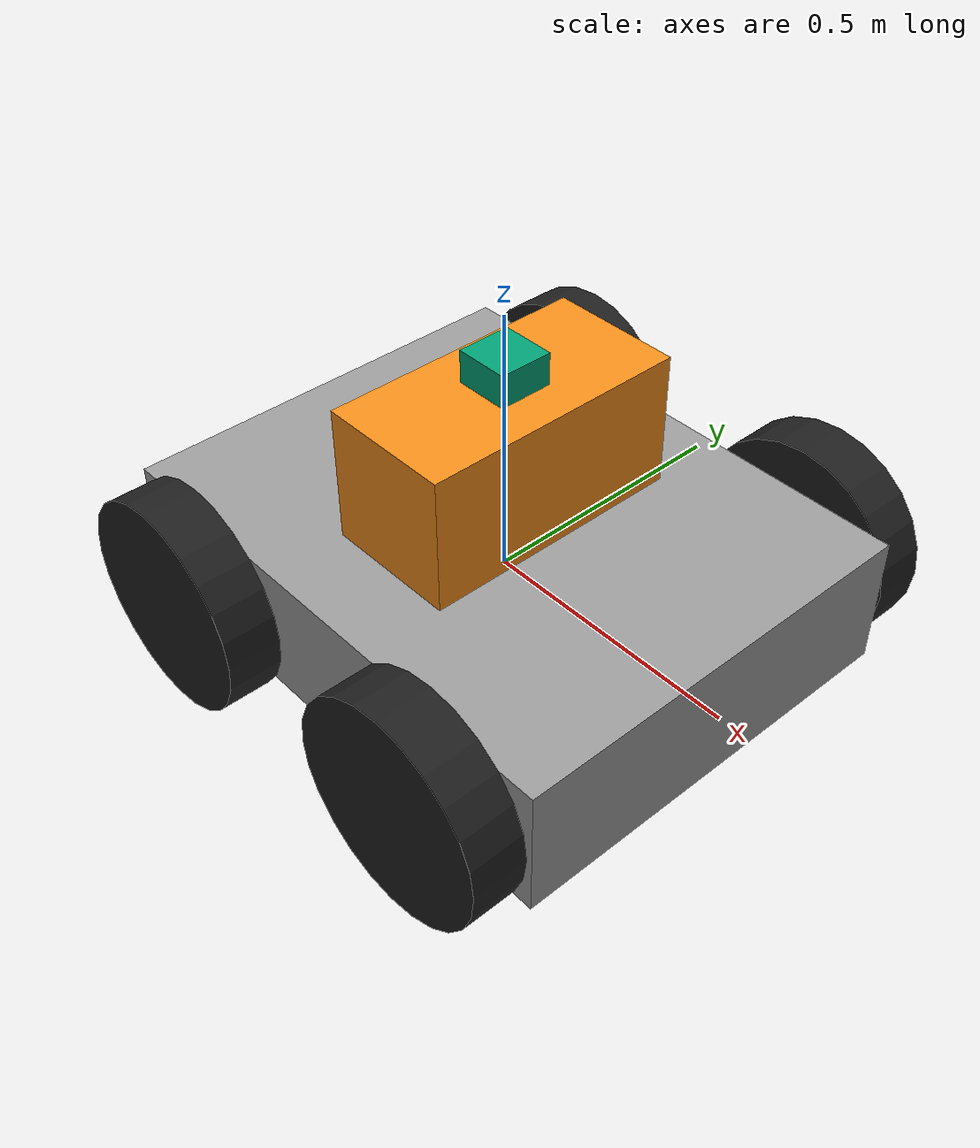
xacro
<?xml version="1.0"?>
<!-- Mobile Manipulation Robot -->
<robot name="momapbot" xmlns:xacro="http://www.ros.org/wiki/xacro">

  <!-- Constants and/or parameters of robot -->
  <xacro:property name="PI" value="3.1415926535897931"/>

  <!-- Base -->
  <xacro:property name="base_width" value=".8"/>
  <xacro:property name="base_length" value="1"/>
  <xacro:property name="base_height" value=".25"/>
  <xacro:property name="base_mass" value="25"/>

  <!--Torso-->
  <xacro:property name="torso_width" value=".5"/>
  <xacro:property name="torso_length" value=".25"/>
  <xacro:property name="torso_height" value=".25"/>
  <xacro:property name="torso_mass" value="5"/>

  <!-- Wheels -->
  <xacro:property name="wheel_radius" value=".2"/>
  <xacro:property name="wheel_width" value=".1"/>
  <xacro:property name="wheel_mass" value="1"/>

  <!-- Import all Gazebo-customization elements, including Gazebo colors -->
  <xacro:include filename="$(find momapbot_description)/urdf/momapbot.gazebo"/>

  <!-- Base -->
  <link name="base_link">

    <visual>
      <geometry>
        <box size="${base_length} ${base_width} ${base_height}"/>
      </geometry>
      <material name="grey"/>
    </visual>

    <collision>
      <geometry>
        <box size="${base_length} ${base_width} ${base_height}"/>
      </geometry>
    </collision>

    <inertial>
      <origin xyz="0 0 ${base_height/2}" rpy="0 0 0"/>
      <mass value="${base_mass}"/>
      <!-- THIS INERTIA IS WRONG. IT IS MADE UP -->
      <inertia
	  ixx="${base_mass / 12.0 * (base_width*base_width + base_height*base_height)}" ixy="0.0" ixz="0.0"
	  iyy="${base_mass / 12.0 * (base_height*base_height + base_width*base_width)}" iyz="0.0"
	  izz="${base_mass / 12.0 * (base_width*base_width + base_width*base_width)}"/>
    </inertial>

  </link>

  <!-- Torso -->
  <link name="torso">
    <visual>
      <geometry>
        <box size="${torso_length} ${torso_width} ${torso_height}"/>
      </geometry>
      <origin xyz="0 0 ${torso_height/2}"/>
      <material name="orange"/>
    </visual>

    <collision>
      <geometry>
        <box size="${torso_length} ${torso_width} ${torso_height}"/>
      </geometry>
      <origin xyz="0 0 ${torso_height/2}"/>
    </collision>

    <inertial>
      <origin xyz="0 0 ${torso_height/2}" rpy="0 0 0"/>
      <mass value="${torso_mass}"/>
      <!-- THIS INERTIA IS WRONG. IT IS MADE UP -->
      <inertia
	  ixx="${torso_mass / 12.0 * (torso_width*torso_width + torso_height*torso_height)}" ixy="0.0" ixz="0.0"
	  iyy="${torso_mass / 12.0 * (torso_height*torso_height + torso_width*torso_width)}" iyz="0.0"
	  izz="${torso_mass / 12.0 * (torso_width*torso_width + torso_width*torso_width)}"/>
    </inertial>

  </link>

  <joint name="base_to_torso" type="fixed">
    <parent link="base_link"/>
    <child link="torso"/>
    <origin xyz="0 0 ${base_height/2}"/>
  </joint>

  <!-- Hokuyo Laser -->
  <link name="hokuyo_link">
    <collision>
      <origin xyz="0 0 0" rpy="0 0 0"/>
      <geometry>
	<box size="0.1 0.1 0.1"/>
      </geometry>
    </collision>

    <visual>
      <origin xyz="0 0 0" rpy="0 0 0"/>
      <geometry>
        <box size="0.1 0.1 0.1"/>
      </geometry>
    </visual>

    <inertial>
      <mass value="1e-5" />
      <origin xyz="0 0 0" rpy="0 0 0"/>
      <inertia ixx="1e-6" ixy="0" ixz="0" iyy="1e-6" iyz="0" izz="1e-6" />
    </inertial>
  </link>

  <joint name="hokuyo_joint" type="fixed">
    <axis xyz="0 1 0" />
    <origin xyz="0 0 ${torso_height+.01}" rpy="0 0 0"/>
    <parent link="torso"/>
    <child link="hokuyo_link"/>
  </joint>

  <!-- Right Front Wheel -->
  <link name="right_front_wheel">
    <visual>
      <geometry>
        <cylinder length="${wheel_width}" radius="${wheel_radius}"/>
      </geometry>
      <material name="black"/>
    </visual>

    <collision>
      <geometry>
        <cylinder length="${wheel_width}" radius="${wheel_radius}"/>
      </geometry>
    </collision>

    <inertial>
      <mass value="${wheel_mass}"/>
      <inertia ixy="0" ixz="0" iyz="0"
	       ixx="${wheel_mass/12 * (3*wheel_radius*wheel_radius + wheel_width*wheel_width)}"
	       iyy="${wheel_mass/12 * (3*wheel_radius*wheel_radius + wheel_width*wheel_width)}"
	       izz="${wheel_mass*wheel_radius*wheel_radius/2}"/>
    </inertial>

  </link>

  <!-- Left Front Wheel-->
  <link name="left_front_wheel">
    <visual>
      <geometry>
        <cylinder length="${wheel_width}" radius="${wheel_radius}"/>
      </geometry>
      <material name="black"/>
    </visual>

    <collision>
      <geometry>
        <cylinder length="${wheel_width}" radius="${wheel_radius}"/>
      </geometry>
    </collision>

    <inertial>
      <mass value="${wheel_mass}"/>
      <inertia ixy="0" ixz="0" iyz="0"
	       ixx="${wheel_mass/12 * (3*wheel_radius*wheel_radius + wheel_width*wheel_width)}"
	       iyy="${wheel_mass/12 * (3*wheel_radius*wheel_radius + wheel_width*wheel_width)}"
	       izz="${wheel_mass*wheel_radius*wheel_radius/2}"/>
    </inertial>
  </link>

  <!-- Right Rear Wheel -->
  <link name="right_rear_wheel">
    <visual>
      <geometry>
        <cylinder length="${wheel_width}" radius="${wheel_radius}"/>
      </geometry>
      <material name="black"/>
    </visual>

    <collision>
      <geometry>
        <cylinder length="${wheel_width}" radius="${wheel_radius}"/>
      </geometry>
    </collision>

    <inertial>
      <mass value="${wheel_mass}"/>
      <inertia ixy="0" ixz="0" iyz="0"
	       ixx="${wheel_mass/12 * (3*wheel_radius*wheel_radius + wheel_width*wheel_width)}"
	       iyy="${wheel_mass/12 * (3*wheel_radius*wheel_radius + wheel_width*wheel_width)}"
	       izz="${wheel_mass*wheel_radius*wheel_radius/2}"/>
    </inertial>

  </link>

  <!-- Left Rear Wheel -->
  <link name="left_rear_wheel">
    <visual>
      <geometry>
        <cylinder length="${wheel_width}" radius="${wheel_radius}"/>
      </geometry>
      <material name="black"/>
    </visual>

    <collision>
      <geometry>
        <cylinder length="${wheel_width}" radius="${wheel_radius}"/>
      </geometry>
    </collision>

    <inertial>
      <mass value="${wheel_mass}"/>
      <inertia ixy="0" ixz="0" iyz="0"
	       ixx="${wheel_mass/12 * (3*wheel_radius*wheel_radius + wheel_width*wheel_width)}"
	       iyy="${wheel_mass/12 * (3*wheel_radius*wheel_radius + wheel_width*wheel_width)}"
	       izz="${wheel_mass*wheel_radius*wheel_radius/2}"/>
    </inertial>
  </link>

  <joint name="base_to_right_front_wheel" type="continuous">
    <axis xyz="0 0 1"/>
    <parent link="base_link"/>
    <child link="right_front_wheel"/>
    <origin rpy="${-PI/2} 0 0" xyz="${base_length/2-wheel_radius} ${-(base_width+wheel_width)/2-.01} 0.0"/>
  </joint>

  <transmission name="right_front_wheel_drive">
    <type>transmission_interface/SimpleTransmission</type>
    <joint name="base_to_right_front_wheel">
      <hardwareInterface>EffortJointInterface</hardwareInterface>
    </joint>
    <actuator name="right_front_motor">
      <hardwareInterface>EffortJointInterface</hardwareInterface>
      <mechanicalReduction>1</mechanicalReduction>
    </actuator>
  </transmission>

  <joint name="base_to_left_front_wheel" type="continuous">
    <axis xyz="0 0 1"/>
    <parent link="base_link"/>
    <child link="left_front_wheel"/>
    <origin rpy="${-PI/2} 0 0" xyz="${base_length/2-wheel_radius} ${(base_width+wheel_width)/2+.01} 0.0"/>
  </joint>

  <transmission name="left_front_wheel_drive">
    <type>transmission_interface/SimpleTransmission</type>
    <joint name="base_to_left_front_wheel">
      <hardwareInterface>EffortJointInterface</hardwareInterface>
    </joint>
    <actuator name="left_front_motor">
      <hardwareInterface>EffortJointInterface</hardwareInterface>
      <mechanicalReduction>1</mechanicalReduction>
    </actuator>
  </transmission>

  <joint name="base_to_right_rear_wheel" type="continuous">
    <axis xyz="0 0 1"/>
    <parent link="base_link"/>
    <child link="right_rear_wheel"/>
    <origin rpy="${-PI/2} 0 0" xyz="${-(base_length/2-wheel_radius)} ${-(base_width+wheel_width)/2-.01} 0.0"/>
  </joint>

  <transmission name="right_rear_wheel_drive">
    <type>transmission_interface/SimpleTransmission</type>
    <joint name="base_to_right_rear_wheel">
      <hardwareInterface>EffortJointInterface</hardwareInterface>
    </joint>
    <actuator name="right_rear_motor">
      <hardwareInterface>EffortJointInterface</hardwareInterface>
      <mechanicalReduction>1</mechanicalReduction>
    </actuator>
  </transmission>

  <joint name="base_to_left_rear_wheel" type="continuous">
    <axis xyz="0 0 1"/>
    <parent link="base_link"/>
    <child link="left_rear_wheel"/>
    <origin rpy="${-PI/2} 0 0" xyz="${-(base_length/2-wheel_radius)} ${(base_width+wheel_width)/2+.01} 0.0"/>
  </joint>

  <transmission name="left_rear_wheel_drive">
    <type>transmission_interface/SimpleTransmission</type>
    <joint name="base_to_left_rear_wheel">
      <hardwareInterface>EffortJointInterface</hardwareInterface>
    </joint>
    <actuator name="left_rear_motor">
      <hardwareInterface>EffortJointInterface</hardwareInterface>
      <mechanicalReduction>1</mechanicalReduction>
    </actuator>
  </transmission>

</robot>
